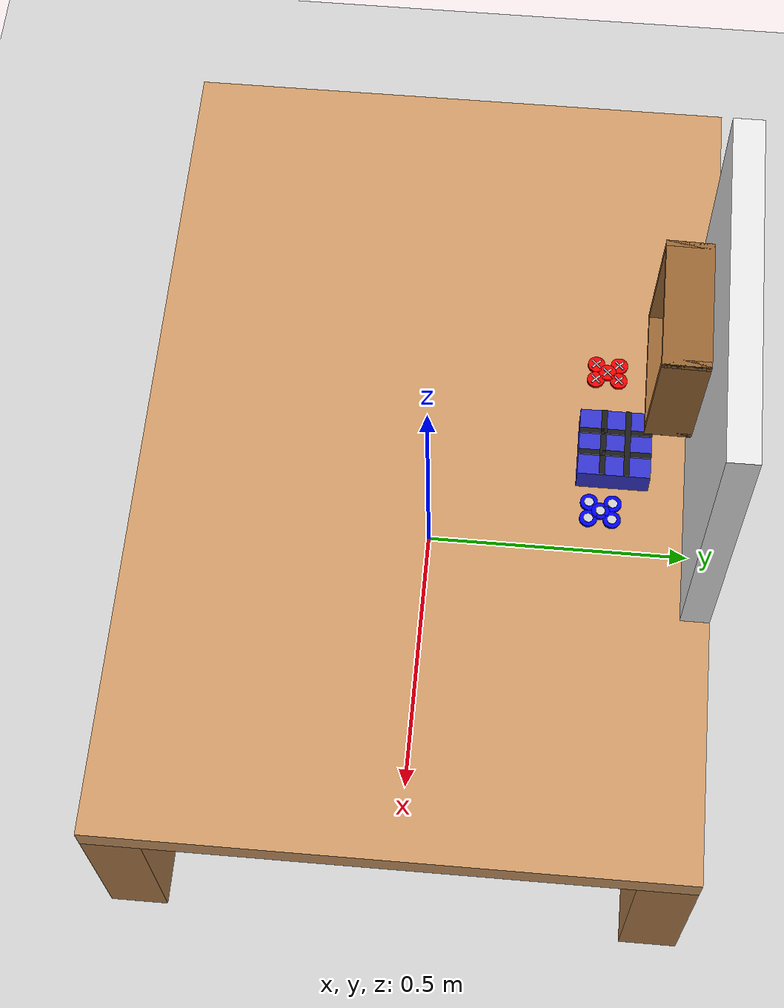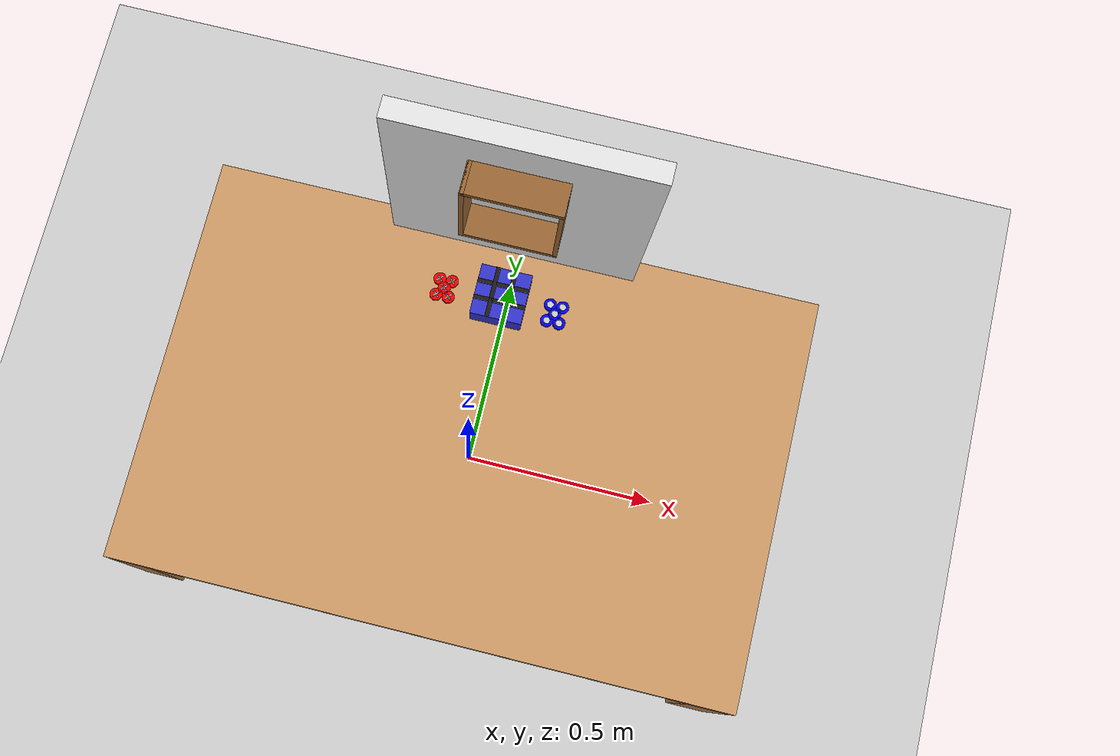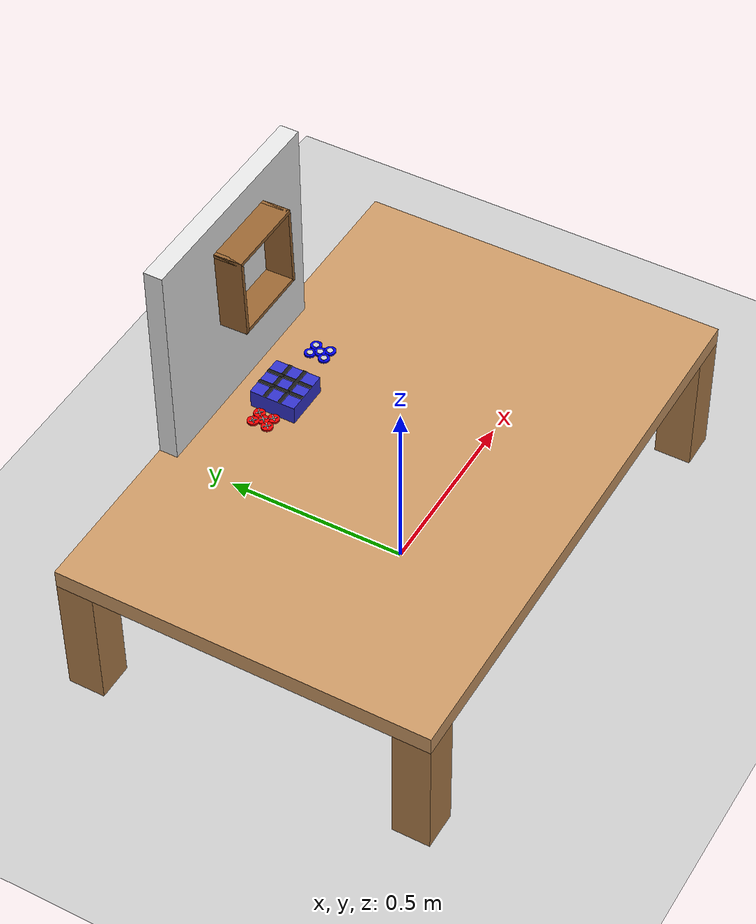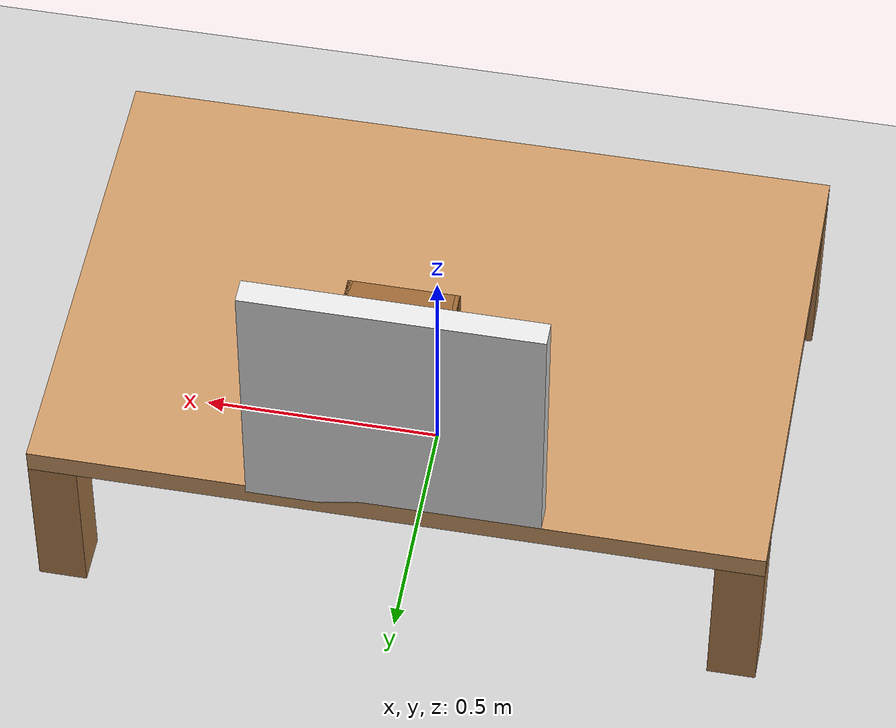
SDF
<sdf version="1.10">
 <world name="WORKINGPROTO1">
  <physics name="1ms" type="ignored">
   <max_step_size>0.001</max_step_size>
   <real_time_factor>1</real_time_factor>
   <real_time_update_rate>1000</real_time_update_rate>
  </physics>
  <plugin name="gz::sim::systems::Physics" filename="gz-sim-physics-system"/>
  <plugin name="gz::sim::systems::UserCommands" filename="gz-sim-user-commands-system"/>
  <plugin name="gz::sim::systems::SceneBroadcaster" filename="gz-sim-scene-broadcaster-system"/>
  <gravity>0 0 -9.8000000000000007</gravity>
  <magnetic_field>5.5644999999999998e-06 2.2875799999999999e-05 -4.2388400000000002e-05</magnetic_field>
  <atmosphere type="adiabatic"/>
  <scene>
   <ambient>0.400000006 0.400000006 0.400000006 1</ambient>
   <background>0.699999988 0.699999988 0.699999988 1</background>
   <shadows>true</shadows>
  </scene>
  <model name="ground_plane">
   <static>true</static>
   <link name="link">
    <collision name="collision">
     <geometry><plane><normal>0 0 1</normal><size>100 100</size></plane></geometry>
     <surface>
      <contact><collide_bitmask>65535</collide_bitmask><ode><mu>100</mu><mu2>50</mu2></ode></contact>
      <friction><ode><mu>100</mu><mu2>50</mu2></ode></friction>
     </surface>
    </collision>
    <visual name="visual">
     <cast_shadows>false</cast_shadows>
     <geometry><plane><normal>0 0 1</normal><size>100 100</size></plane></geometry>
     <material>
      <ambient>0.800000012 0.800000012 0.800000012 1</ambient>
      <diffuse>0.800000012 0.800000012 0.800000012 1</diffuse>
      <specular>0 0 0 1</specular>
     </material>
    </visual>
    <inertial>
     <mass>1</mass>
     <inertia><ixx>1</ixx><ixy>0</ixy><ixz>0</ixz><iyy>1</iyy><iyz>0</iyz><izz>1</izz></inertia>
    </inertial>
   </link>
  </model>
  <model name="study_table">
   <static>true</static>
   <link name="table_link">
    <inertial>
     <mass>50</mass>
     <inertia><ixx>10</ixx><iyy>8</iyy><izz>6</izz><ixy>0</ixy><ixz>0</ixz><iyz>0</iyz></inertia>
    </inertial>
    <visual name="table_top">
     <pose>0 0 0.375 0 0 0</pose>
     <geometry><box><size>1.5 1 0.050000000000000003</size></box></geometry>
     <material>
      <ambient>0.800000012 0.600000024 0.400000006 1</ambient>
      <diffuse>0.800000012 0.600000024 0.400000006 1</diffuse>
     </material>
    </visual>
    <visual name="table_leg1">
     <pose>0.69999999999999996 0.45000000000000001 0.17499999999999999 0 0 0</pose>
     <geometry><box><size>0.10000000000000001 0.10000000000000001 0.34999999999999998</size></box></geometry>
     <material>
      <ambient>0.699999988 0.5 0.300000012 1</ambient>
      <diffuse>0.699999988 0.5 0.300000012 1</diffuse>
     </material>
    </visual>
    <visual name="table_leg2">
     <pose>-0.69999999999999996 0.45000000000000001 0.17499999999999999 0 0 0</pose>
     <geometry><box><size>0.10000000000000001 0.10000000000000001 0.34999999999999998</size></box></geometry>
     <material>
      <ambient>0.699999988 0.5 0.300000012 1</ambient>
      <diffuse>0.699999988 0.5 0.300000012 1</diffuse>
     </material>
    </visual>
    <visual name="table_leg3">
     <pose>0.69999999999999996 -0.45000000000000001 0.17499999999999999 0 0 0</pose>
     <geometry><box><size>0.10000000000000001 0.10000000000000001 0.34999999999999998</size></box></geometry>
     <material>
      <ambient>0.699999988 0.5 0.300000012 1</ambient>
      <diffuse>0.699999988 0.5 0.300000012 1</diffuse>
     </material>
    </visual>
    <visual name="table_leg4">
     <pose>-0.69999999999999996 -0.45000000000000001 0.17499999999999999 0 0 0</pose>
     <geometry><box><size>0.10000000000000001 0.10000000000000001 0.34999999999999998</size></box></geometry>
     <material>
      <ambient>0.699999988 0.5 0.300000012 1</ambient>
      <diffuse>0.699999988 0.5 0.300000012 1</diffuse>
     </material>
    </visual>
    <collision name="table_collision">
     <pose>0 0 0.375 0 0 0</pose>
     <geometry><box><size>1.5 1 0.050000000000000003</size></box></geometry>
    </collision>
   </link>
  </model>
  <model name="wall">
   <static>true</static>
   <pose>0 0.47499999999999998 0.68000000000000002 0 0 0</pose>
   <link name="wall_link">
    <inertial>
     <mass>20000000</mass>
     <inertia>
      <ixx>1.6699999999999999</ixx>
      <iyy>2.6699999999999999</iyy>
      <izz>1.0700000000000001</izz>
      <ixy>0</ixy>
      <ixz>0</ixz>
      <iyz>0</iyz>
     </inertia>
    </inertial>
    <visual name="wall_visual">
     <geometry><box><size>0.6 0.050000000000000003 0.6</size></box></geometry>
     <material>
      <ambient>0.899999976 0.899999976 0.899999976 1</ambient>
      <diffuse>0.899999976 0.899999976 0.899999976 1</diffuse>
     </material>
    </visual>
    <collision name="wall_collision">
     <geometry><box><size>0.6 0.050000000000000003 0.6</size></box></geometry>
    </collision>
   </link>
  </model>
  <model name="tictactoe_game">
   <static>true</static>
   <pose>0 0.325 0.42499999999999999 0 0 0</pose>
   <link name="board">
    <inertial>
     <mass>2</mass>
     <inertia>
      <ixx>0.10000000000000001</ixx>
      <iyy>0.10000000000000001</iyy>
      <izz>0.10000000000000001</izz>
      <ixy>0</ixy>
      <ixz>0</ixz>
      <iyz>0</iyz>
     </inertia>
    </inertial>
    <visual name="board_visual">
     <geometry><box><size>0.125 0.125 0.050000000000000003</size></box></geometry>
     <material>
      <ambient>0.200000003 0.200000003 0.800000012 1</ambient>
      <diffuse>0.200000003 0.200000003 0.800000012 1</diffuse>
     </material>
    </visual>
    <visual name="grid_line1">
     <pose>-0.02083333 0 0.025999999999999999 0 0 0</pose>
     <geometry><box><size>0.01 0.125 0.002</size></box></geometry>
     <material>
      <ambient>0.100000001 0.100000001 0.100000001 1</ambient>
      <diffuse>0.100000001 0.100000001 0.100000001 1</diffuse>
     </material>
    </visual>
    <visual name="grid_line2">
     <pose>0.02083333 0 0.025999999999999999 0 0 0</pose>
     <geometry><box><size>0.01 0.125 0.002</size></box></geometry>
     <material>
      <ambient>0.100000001 0.100000001 0.100000001 1</ambient>
      <diffuse>0.100000001 0.100000001 0.100000001 1</diffuse>
     </material>
    </visual>
    <visual name="grid_line3">
     <pose>0 -0.02083333 0.025999999999999999 0 0 0</pose>
     <geometry><box><size>0.125 0.01 0.002</size></box></geometry>
     <material>
      <ambient>0.100000001 0.100000001 0.100000001 1</ambient>
      <diffuse>0.100000001 0.100000001 0.100000001 1</diffuse>
     </material>
    </visual>
    <visual name="grid_line4">
     <pose>0 0.02083333 0.025999999999999999 0 0 0</pose>
     <geometry><box><size>0.125 0.01 0.002</size></box></geometry>
     <material>
      <ambient>0.100000001 0.100000001 0.100000001 1</ambient>
      <diffuse>0.100000001 0.100000001 0.100000001 1</diffuse>
     </material>
    </visual>
    <collision name="board_collision">
     <geometry><box><size>0.125 0.125 0.050000000000000003</size></box></geometry>
    </collision>
   </link>
  </model>
  <model name="o_piece_1">
   <static>false</static>
   <pose>0.15 0.325 0.455 0 0 0</pose>
   <link name="o_link">
    <inertial>
     <mass>0.05</mass>
     <inertia><ixx>0.001</ixx><iyy>0.001</iyy><izz>0.001</izz><ixy>0</ixy><ixz>0</ixz><iyz>0</iyz></inertia>
    </inertial>
    <visual name="o_visual">
     <geometry><cylinder><radius>0.015</radius><length>0.005</length></cylinder></geometry>
     <material><ambient>0 0 1 1</ambient><diffuse>0 0 1 1</diffuse></material>
    </visual>
    <visual name="o_ring">
     <pose>0 0 0.003 0 0 0</pose>
     <geometry><cylinder><radius>0.008</radius><length>0.001</length></cylinder></geometry>
     <material><ambient>0.8 0.8 0.8 1</ambient><diffuse>0.8 0.8 0.8 1</diffuse></material>
    </visual>
    <collision name="o_collision">
     <geometry><cylinder><radius>0.015</radius><length>0.005</length></cylinder></geometry>
    </collision>
   </link>
  </model>
  <model name="o_piece_2">
   <static>false</static>
   <pose>0.12 0.325 0.455 0 0 0</pose>
   <link name="o_link">
    <inertial>
     <mass>0.05</mass>
     <inertia><ixx>0.001</ixx><iyy>0.001</iyy><izz>0.001</izz><ixy>0</ixy><ixz>0</ixz><iyz>0</iyz></inertia>
    </inertial>
    <visual name="o_visual">
     <geometry><cylinder><radius>0.015</radius><length>0.005</length></cylinder></geometry>
     <material><ambient>0 0 1 1</ambient><diffuse>0 0 1 1</diffuse></material>
    </visual>
    <visual name="o_ring">
     <pose>0 0 0.003 0 0 0</pose>
     <geometry><cylinder><radius>0.008</radius><length>0.001</length></cylinder></geometry>
     <material><ambient>0.8 0.8 0.8 1</ambient><diffuse>0.8 0.8 0.8 1</diffuse></material>
    </visual>
    <collision name="o_collision">
     <geometry><cylinder><radius>0.015</radius><length>0.005</length></cylinder></geometry>
    </collision>
   </link>
  </model>
  <model name="o_piece_3">
   <static>false</static>
   <pose>0.15 0.285 0.455 0 0 0</pose>
   <link name="o_link">
    <inertial>
     <mass>0.05</mass>
     <inertia><ixx>0.001</ixx><iyy>0.001</iyy><izz>0.001</izz><ixy>0</ixy><ixz>0</ixz><iyz>0</iyz></inertia>
    </inertial>
    <visual name="o_visual">
     <geometry><cylinder><radius>0.015</radius><length>0.005</length></cylinder></geometry>
     <material><ambient>0 0 1 1</ambient><diffuse>0 0 1 1</diffuse></material>
    </visual>
    <visual name="o_ring">
     <pose>0 0 0.003 0 0 0</pose>
     <geometry><cylinder><radius>0.008</radius><length>0.001</length></cylinder></geometry>
     <material><ambient>0.8 0.8 0.8 1</ambient><diffuse>0.8 0.8 0.8 1</diffuse></material>
    </visual>
    <collision name="o_collision">
     <geometry><cylinder><radius>0.015</radius><length>0.005</length></cylinder></geometry>
    </collision>
   </link>
  </model>
  <model name="o_piece_4">
   <static>false</static>
   <pose>0.12 0.285 0.455 0 0 0</pose>
   <link name="o_link">
    <inertial>
     <mass>0.05</mass>
     <inertia><ixx>0.001</ixx><iyy>0.001</iyy><izz>0.001</izz><ixy>0</ixy><ixz>0</ixz><iyz>0</iyz></inertia>
    </inertial>
    <visual name="o_visual">
     <geometry><cylinder><radius>0.015</radius><length>0.005</length></cylinder></geometry>
     <material><ambient>0 0 1 1</ambient><diffuse>0 0 1 1</diffuse></material>
    </visual>
    <visual name="o_ring">
     <pose>0 0 0.003 0 0 0</pose>
     <geometry><cylinder><radius>0.008</radius><length>0.001</length></cylinder></geometry>
     <material><ambient>0.8 0.8 0.8 1</ambient><diffuse>0.8 0.8 0.8 1</diffuse></material>
    </visual>
    <collision name="o_collision">
     <geometry><cylinder><radius>0.015</radius><length>0.005</length></cylinder></geometry>
    </collision>
   </link>
  </model>
  <model name="o_piece_5">
   <static>false</static>
   <pose>0.135 0.305 0.455 0 0 0</pose>
   <link name="o_link">
    <inertial>
     <mass>0.05</mass>
     <inertia><ixx>0.001</ixx><iyy>0.001</iyy><izz>0.001</izz><ixy>0</ixy><ixz>0</ixz><iyz>0</iyz></inertia>
    </inertial>
    <visual name="o_visual">
     <geometry><cylinder><radius>0.015</radius><length>0.005</length></cylinder></geometry>
     <material><ambient>0 0 1 1</ambient><diffuse>0 0 1 1</diffuse></material>
    </visual>
    <visual name="o_ring">
     <pose>0 0 0.003 0 0 0</pose>
     <geometry><cylinder><radius>0.008</radius><length>0.001</length></cylinder></geometry>
     <material><ambient>0.8 0.8 0.8 1</ambient><diffuse>0.8 0.8 0.8 1</diffuse></material>
    </visual>
    <collision name="o_collision">
     <geometry><cylinder><radius>0.015</radius><length>0.005</length></cylinder></geometry>
    </collision>
   </link>
  </model>
  <model name="robot_box">
   <static>true</static>
   <pose>0 0.39492899179458613 0.80525898933410633 1.543880074027717 0 0</pose>
   <link name="box_link">
    <inertial>
     <mass>5</mass>
     <inertia>
      <ixx>0.10000000000000001</ixx>
      <iyy>0.10000000000000001</iyy>
      <izz>0.10000000000000001</izz>
      <ixy>0</ixy>
      <ixz>0</ixz>
      <iyz>0</iyz>
     </inertia>
    </inertial>
    <visual name="front_wall">
     <pose>0.105 0 0 0 0 0</pose>
     <geometry><box><size>0.01 0.22 0.074999999999999997</size></box></geometry>
     <material>
      <ambient>0.600000024 0.400000006 0.200000003 1</ambient>
      <diffuse>0.600000024 0.400000006 0.200000003 1</diffuse>
     </material>
    </visual>
    <collision name="front_wall_collision">
     <pose>0.105 0 0 0 0 0</pose>
     <geometry><box><size>0.014 0.27000000000000002 0.074999999999999997</size></box></geometry>
    </collision>
    <visual name="back_wall">
     <pose>-0.105 0 0 0 0 0</pose>
     <geometry><box><size>0.01 0.22 0.074999999999999997</size></box></geometry>
     <material>
      <ambient>0.600000024 0.400000006 0.200000003 1</ambient>
      <diffuse>0.600000024 0.400000006 0.200000003 1</diffuse>
     </material>
    </visual>
    <collision name="back_wall_collision">
     <pose>-0.105 0 0 0 0 0</pose>
     <geometry><box><size>0.01 0.22 0.074999999999999997</size></box></geometry>
    </collision>
    <visual name="left_wall">
     <pose>0 0.105 0 0 0 0</pose>
     <geometry><box><size>0.22 0.01 0.074999999999999997</size></box></geometry>
     <material>
      <ambient>0.600000024 0.400000006 0.200000003 1</ambient>
      <diffuse>0.600000024 0.400000006 0.200000003 1</diffuse>
     </material>
    </visual>
    <collision name="left_wall_collision">
     <pose>0 0.105 0 0 0 0</pose>
     <geometry><box><size>0.22 0.01 0.074999999999999997</size></box></geometry>
    </collision>
    <visual name="right_wall">
     <pose>0 -0.105 0 0 0 0</pose>
     <geometry><box><size>0.22 0.01 0.074999999999999997</size></box></geometry>
     <material>
      <ambient>0.600000024 0.400000006 0.200000003 1</ambient>
      <diffuse>0.600000024 0.400000006 0.200000003 1</diffuse>
     </material>
    </visual>
    <collision name="right_wall_collision">
     <pose>0 -0.105 0 0 0 0</pose>
     <geometry><box><size>0.22 0.01 0.074999999999999997</size></box></geometry>
    </collision>
   </link>
  </model>
  <model name="x_piece_1">
   <static>false</static>
   <pose>-0.15 0.325 0.455 0 0 0</pose>
   <link name="x_link">
    <inertial>
     <mass>0.05</mass>
     <inertia><ixx>0.001</ixx><iyy>0.001</iyy><izz>0.001</izz><ixy>0</ixy><ixz>0</ixz><iyz>0</iyz></inertia>
    </inertial>
    <visual name="x_visual">
     <geometry><cylinder><radius>0.015</radius><length>0.005</length></cylinder></geometry>
     <material><ambient>1 0 0 1</ambient><diffuse>1 0 0 1</diffuse></material>
    </visual>
    <visual name="x_cross1">
     <pose>0 0 0.003 0 0 0.785398</pose>
     <geometry><box><size>0.02 0.003 0.001</size></box></geometry>
     <material><ambient>0.8 0.8 0.8 1</ambient><diffuse>0.8 0.8 0.8 1</diffuse></material>
    </visual>
    <visual name="x_cross2">
     <pose>0 0 0.003 0 0 -0.785398</pose>
     <geometry><box><size>0.02 0.003 0.001</size></box></geometry>
     <material><ambient>0.8 0.8 0.8 1</ambient><diffuse>0.8 0.8 0.8 1</diffuse></material>
    </visual>
    <collision name="x_collision">
     <geometry><cylinder><radius>0.015</radius><length>0.005</length></cylinder></geometry>
    </collision>
   </link>
  </model>
  <model name="x_piece_2">
   <static>false</static>
   <pose>-0.12 0.325 0.455 0 0 0</pose>
   <link name="x_link">
    <inertial>
     <mass>0.05</mass>
     <inertia><ixx>0.001</ixx><iyy>0.001</iyy><izz>0.001</izz><ixy>0</ixy><ixz>0</ixz><iyz>0</iyz></inertia>
    </inertial>
    <visual name="x_visual">
     <geometry><cylinder><radius>0.015</radius><length>0.005</length></cylinder></geometry>
     <material><ambient>1 0 0 1</ambient><diffuse>1 0 0 1</diffuse></material>
    </visual>
    <visual name="x_cross1">
     <pose>0 0 0.003 0 0 0.785398</pose>
     <geometry><box><size>0.02 0.003 0.001</size></box></geometry>
     <material><ambient>0.8 0.8 0.8 1</ambient><diffuse>0.8 0.8 0.8 1</diffuse></material>
    </visual>
    <visual name="x_cross2">
     <pose>0 0 0.003 0 0 -0.785398</pose>
     <geometry><box><size>0.02 0.003 0.001</size></box></geometry>
     <material><ambient>0.8 0.8 0.8 1</ambient><diffuse>0.8 0.8 0.8 1</diffuse></material>
    </visual>
    <collision name="x_collision">
     <geometry><cylinder><radius>0.015</radius><length>0.005</length></cylinder></geometry>
    </collision>
   </link>
  </model>
  <model name="x_piece_3">
   <static>false</static>
   <pose>-0.15 0.285 0.455 0 0 0</pose>
   <link name="x_link">
    <inertial>
     <mass>0.05</mass>
     <inertia><ixx>0.001</ixx><iyy>0.001</iyy><izz>0.001</izz><ixy>0</ixy><ixz>0</ixz><iyz>0</iyz></inertia>
    </inertial>
    <visual name="x_visual">
     <geometry><cylinder><radius>0.015</radius><length>0.005</length></cylinder></geometry>
     <material><ambient>1 0 0 1</ambient><diffuse>1 0 0 1</diffuse></material>
    </visual>
    <visual name="x_cross1">
     <pose>0 0 0.003 0 0 0.785398</pose>
     <geometry><box><size>0.02 0.003 0.001</size></box></geometry>
     <material><ambient>0.8 0.8 0.8 1</ambient><diffuse>0.8 0.8 0.8 1</diffuse></material>
    </visual>
    <visual name="x_cross2">
     <pose>0 0 0.003 0 0 -0.785398</pose>
     <geometry><box><size>0.02 0.003 0.001</size></box></geometry>
     <material><ambient>0.8 0.8 0.8 1</ambient><diffuse>0.8 0.8 0.8 1</diffuse></material>
    </visual>
    <collision name="x_collision">
     <geometry><cylinder><radius>0.015</radius><length>0.005</length></cylinder></geometry>
    </collision>
   </link>
  </model>
  <model name="x_piece_4">
   <static>false</static>
   <pose>-0.12 0.285 0.455 0 0 0</pose>
   <link name="x_link">
    <inertial>
     <mass>0.05</mass>
     <inertia><ixx>0.001</ixx><iyy>0.001</iyy><izz>0.001</izz><ixy>0</ixy><ixz>0</ixz><iyz>0</iyz></inertia>
    </inertial>
    <visual name="x_visual">
     <geometry><cylinder><radius>0.015</radius><length>0.005</length></cylinder></geometry>
     <material><ambient>1 0 0 1</ambient><diffuse>1 0 0 1</diffuse></material>
    </visual>
    <visual name="x_cross1">
     <pose>0 0 0.003 0 0 0.785398</pose>
     <geometry><box><size>0.02 0.003 0.001</size></box></geometry>
     <material><ambient>0.8 0.8 0.8 1</ambient><diffuse>0.8 0.8 0.8 1</diffuse></material>
    </visual>
    <visual name="x_cross2">
     <pose>0 0 0.003 0 0 -0.785398</pose>
     <geometry><box><size>0.02 0.003 0.001</size></box></geometry>
     <material><ambient>0.8 0.8 0.8 1</ambient><diffuse>0.8 0.8 0.8 1</diffuse></material>
    </visual>
    <collision name="x_collision">
     <geometry><cylinder><radius>0.015</radius><length>0.005</length></cylinder></geometry>
    </collision>
   </link>
  </model>
  <model name="x_piece_5">
   <static>false</static>
   <pose>-0.135 0.305 0.455 0 0 0</pose>
   <link name="x_link">
    <inertial>
     <mass>0.05</mass>
     <inertia><ixx>0.001</ixx><iyy>0.001</iyy><izz>0.001</izz><ixy>0</ixy><ixz>0</ixz><iyz>0</iyz></inertia>
    </inertial>
    <visual name="x_visual">
     <geometry><cylinder><radius>0.015</radius><length>0.005</length></cylinder></geometry>
     <material><ambient>1 0 0 1</ambient><diffuse>1 0 0 1</diffuse></material>
    </visual>
    <visual name="x_cross1">
     <pose>0 0 0.003 0 0 0.785398</pose>
     <geometry><box><size>0.02 0.003 0.001</size></box></geometry>
     <material><ambient>0.8 0.8 0.8 1</ambient><diffuse>0.8 0.8 0.8 1</diffuse></material>
    </visual>
    <visual name="x_cross2">
     <pose>0 0 0.003 0 0 -0.785398</pose>
     <geometry><box><size>0.02 0.003 0.001</size></box></geometry>
     <material><ambient>0.8 0.8 0.8 1</ambient><diffuse>0.8 0.8 0.8 1</diffuse></material>
    </visual>
    <collision name="x_collision">
     <geometry><cylinder><radius>0.015</radius><length>0.005</length></cylinder></geometry>
    </collision>
   </link>
  </model>
  <light name="sun" type="directional">
   <pose>0 0 10 0 0 0</pose>
   <intensity>1</intensity>
   <direction>-0.5 0.10000000000000001 -0.90000000000000002</direction>
   <diffuse>0.800000012 0.800000012 0.800000012 1</diffuse>
   <specular>0.200000003 0.200000003 0.200000003 1</specular>
   <attenuation>
    <range>1000</range>
    <linear>0.0099999997764825821</linear>
    <constant>0.89999997615814209</constant>
    <quadratic>0.0010000000474974513</quadratic>
   </attenuation>
   <spot><inner_angle>0</inner_angle><outer_angle>0</outer_angle><falloff>0</falloff></spot>
  </light>
 </world>
</sdf>
